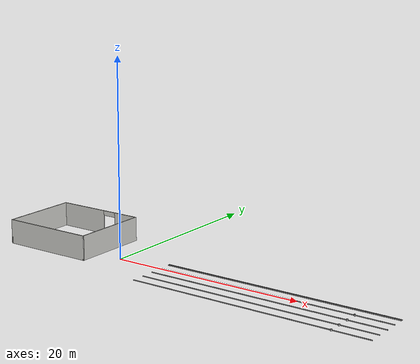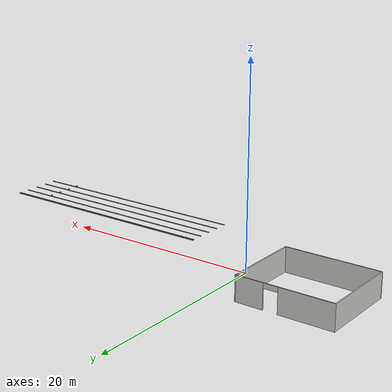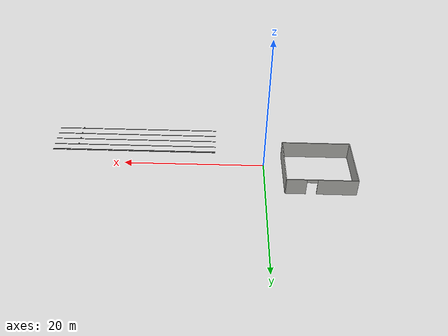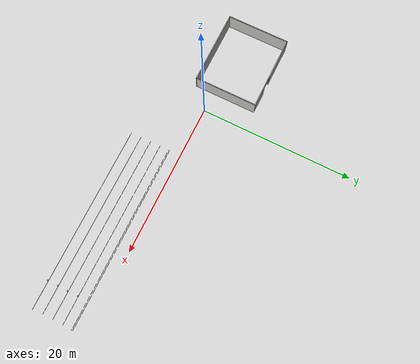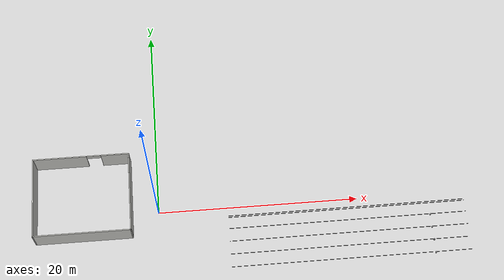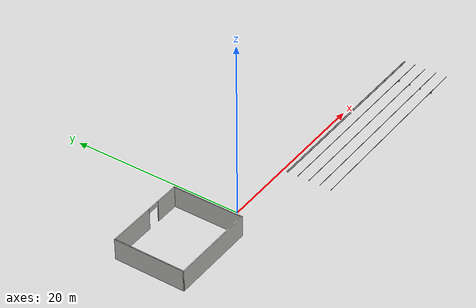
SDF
<sdf version="1.4">
 <world name="default">
  <model name="tray_p2_4">
   <static>1</static>
   <link name="link_0">
    <collision name="collision"><geometry><box><size>23.62 0.085 0.005</size></box></geometry></collision>
    <visual name="visual">
     <geometry><box><size>23.62 0.085 0.005</size></box></geometry>
     <material>
      <script><uri>file://media/materials/scripts/gazebo.material</uri><name>Gazebo/Grey</name></script>
      <emissive>0 0 0 1</emissive>
      <shader type="vertex"><normal_map>__default__</normal_map></shader>
      <specular>0.01 0.01 0.01 1</specular>
      <lighting>1</lighting>
      <ambient>0.7 0.7 0.7 1</ambient>
      <diffuse>0.3 0.3 0.3 1</diffuse>
     </material>
    </visual>
    <pose>18.760 -1.435 1.19165 1.5707 0.0 0.0</pose>
   </link>
  </model>
  <model name="tray_p2_5">
   <static>1</static>
   <link name="link_0">
    <collision name="collision"><geometry><box><size>23.62 0.085 0.005</size></box></geometry></collision>
    <visual name="visual">
     <geometry><box><size>23.62 0.085 0.005</size></box></geometry>
     <material>
      <script><uri>file://media/materials/scripts/gazebo.material</uri><name>Gazebo/Grey</name></script>
      <emissive>0 0 0 1</emissive>
      <shader type="vertex"><normal_map>__default__</normal_map></shader>
      <specular>0.01 0.01 0.01 1</specular>
      <lighting>1</lighting>
      <ambient>0.7 0.7 0.7 1</ambient>
      <diffuse>0.3 0.3 0.3 1</diffuse>
     </material>
    </visual>
    <pose>18.760 -6.565 1.19165 1.5707 0.0 0.0</pose>
   </link>
  </model>
  <model name="tray_p2_6">
   <static>1</static>
   <link name="link_0">
    <collision name="collision"><geometry><box><size>23.62 0.085 0.005</size></box></geometry></collision>
    <visual name="visual">
     <geometry><box><size>23.62 0.085 0.005</size></box></geometry>
     <material>
      <script><uri>file://media/materials/scripts/gazebo.material</uri><name>Gazebo/Grey</name></script>
      <emissive>0 0 0 1</emissive>
      <shader type="vertex"><normal_map>__default__</normal_map></shader>
      <specular>0.01 0.01 0.01 1</specular>
      <lighting>1</lighting>
      <ambient>0.7 0.7 0.7 1</ambient>
      <diffuse>0.3 0.3 0.3 1</diffuse>
     </material>
    </visual>
    <pose>18.760 -5.245 1.19165 1.5707 0.0 0.0</pose>
   </link>
  </model>
  <model name="tray_p2_7">
   <static>1</static>
   <link name="link_0">
    <collision name="collision"><geometry><box><size>23.62 0.085 0.005</size></box></geometry></collision>
    <visual name="visual">
     <geometry><box><size>23.62 0.085 0.005</size></box></geometry>
     <material>
      <script><uri>file://media/materials/scripts/gazebo.material</uri><name>Gazebo/Grey</name></script>
      <emissive>0 0 0 1</emissive>
      <shader type="vertex"><normal_map>__default__</normal_map></shader>
      <specular>0.01 0.01 0.01 1</specular>
      <lighting>1</lighting>
      <ambient>0.7 0.7 0.7 1</ambient>
      <diffuse>0.3 0.3 0.3 1</diffuse>
     </material>
    </visual>
    <pose>18.760 -3.925 1.19165 1.5707 0.0 0.0</pose>
   </link>
  </model>
  <model name="tray_p2_8">
   <static>1</static>
   <link name="link_0">
    <collision name="collision"><geometry><box><size>23.62 0.085 0.005</size></box></geometry></collision>
    <visual name="visual">
     <geometry><box><size>23.62 0.085 0.005</size></box></geometry>
     <material>
      <script><uri>file://media/materials/scripts/gazebo.material</uri><name>Gazebo/Grey</name></script>
      <emissive>0 0 0 1</emissive>
      <shader type="vertex"><normal_map>__default__</normal_map></shader>
      <specular>0.01 0.01 0.01 1</specular>
      <lighting>1</lighting>
      <ambient>0.7 0.7 0.7 1</ambient>
      <diffuse>0.3 0.3 0.3 1</diffuse>
     </material>
    </visual>
    <pose>18.760 -2.605 1.19165 1.5707 0.0 0.0</pose>
   </link>
  </model>
  <model name="tray_p2_9">
   <static>1</static>
   <link name="link_0">
    <collision name="collision"><geometry><box><size>23.62 0.085 0.005</size></box></geometry></collision>
    <visual name="visual">
     <geometry><box><size>23.62 0.085 0.005</size></box></geometry>
     <material>
      <script><uri>file://media/materials/scripts/gazebo.material</uri><name>Gazebo/Grey</name></script>
      <emissive>0 0 0 1</emissive>
      <shader type="vertex"><normal_map>__default__</normal_map></shader>
      <specular>0.01 0.01 0.01 1</specular>
      <lighting>1</lighting>
      <ambient>0.7 0.7 0.7 1</ambient>
      <diffuse>0.3 0.3 0.3 1</diffuse>
     </material>
    </visual>
    <pose>18.760 -1.285 1.19165 1.5707 0.0 0.0</pose>
   </link>
  </model>
  <model name="pot1_0">
   <static>1</static>
   <link name="link_0">
    <collision name="collision">
     <geometry><cylinder><length>0.17</length><radius>0.07</radius></cylinder></geometry>
    </collision>
    <visual name="visual">
     <geometry><cylinder><length>0.17</length><radius>0.07</radius></cylinder></geometry>
     <material>
      <script><uri>file://media/materials/scripts/gazebo.material</uri><name>Gazebo/Grey</name></script>
      <emissive>0 0 0 1</emissive>
      <shader type="vertex"><normal_map>__default__</normal_map></shader>
      <specular>0.01 0.01 0.01 1</specular>
      <lighting>1</lighting>
      <ambient>0.1 0.1 0.1 1</ambient>
      <diffuse>0.05 0.05 0.05 1</diffuse>
     </material>
    </visual>
    <pose>27.000 -6.640 1.23465 0.0 0.0 0.0</pose>
   </link>
  </model>
  <model name="pot1_1">
   <static>1</static>
   <link name="link_0">
    <collision name="collision">
     <geometry><cylinder><length>0.17</length><radius>0.07</radius></cylinder></geometry>
    </collision>
    <visual name="visual">
     <geometry><cylinder><length>0.17</length><radius>0.07</radius></cylinder></geometry>
     <material>
      <script><uri>file://media/materials/scripts/gazebo.material</uri><name>Gazebo/Grey</name></script>
      <emissive>0 0 0 1</emissive>
      <shader type="vertex"><normal_map>__default__</normal_map></shader>
      <specular>0.01 0.01 0.01 1</specular>
      <lighting>1</lighting>
      <ambient>0.1 0.1 0.1 1</ambient>
      <diffuse>0.05 0.05 0.05 1</diffuse>
     </material>
    </visual>
    <pose>27.000 -5.320 1.23465 0.0 0.0 0.0</pose>
   </link>
  </model>
  <model name="pot1_2">
   <static>1</static>
   <link name="link_0">
    <collision name="collision">
     <geometry><cylinder><length>0.17</length><radius>0.07</radius></cylinder></geometry>
    </collision>
    <visual name="visual">
     <geometry><cylinder><length>0.17</length><radius>0.07</radius></cylinder></geometry>
     <material>
      <script><uri>file://media/materials/scripts/gazebo.material</uri><name>Gazebo/Grey</name></script>
      <emissive>0 0 0 1</emissive>
      <shader type="vertex"><normal_map>__default__</normal_map></shader>
      <specular>0.01 0.01 0.01 1</specular>
      <lighting>1</lighting>
      <ambient>0.1 0.1 0.1 1</ambient>
      <diffuse>0.05 0.05 0.05 1</diffuse>
     </material>
    </visual>
    <pose>27.000 -4.000 1.23465 0.0 0.0 0.0</pose>
   </link>
  </model>
  <model name="pot1_3">
   <static>1</static>
   <link name="link_0">
    <collision name="collision">
     <geometry><cylinder><length>0.17</length><radius>0.07</radius></cylinder></geometry>
    </collision>
    <visual name="visual">
     <geometry><cylinder><length>0.17</length><radius>0.07</radius></cylinder></geometry>
     <material>
      <script><uri>file://media/materials/scripts/gazebo.material</uri><name>Gazebo/Grey</name></script>
      <emissive>0 0 0 1</emissive>
      <shader type="vertex"><normal_map>__default__</normal_map></shader>
      <specular>0.01 0.01 0.01 1</specular>
      <lighting>1</lighting>
      <ambient>0.1 0.1 0.1 1</ambient>
      <diffuse>0.05 0.05 0.05 1</diffuse>
     </material>
    </visual>
    <pose>27.000 -2.680 1.23465 0.0 0.0 0.0</pose>
   </link>
  </model>
  <model name="food_handling_shed_0">
   <static>1</static>
   <pose>-7.470 1.670 0.0 0.0 0.0 3.141</pose>
   <link name="Wall_10">
    <collision name="Wall_10_Collision">
     <geometry><box><size>8.2 0.1 2.5</size></box></geometry>
     <pose>0 0 1.25 0 -0 0</pose>
    </collision>
    <visual name="Wall_10_Visual">
     <geometry><box><size>8.2 0.1 2.5</size></box></geometry>
     <meta><layer>0</layer></meta>
     <material>
      <script><uri>file://media/materials/scripts/gazebo.material</uri><name>Gazebo/CeilingTiled</name></script>
      <ambient>1 1 1 1</ambient>
     </material>
     <pose>0 0 1.25 0 -0 0</pose>
    </visual>
    <pose>4.8 0 0 0 -0 -1.5708</pose>
   </link>
   <link name="Wall_11">
    <collision name="Wall_11_Collision_0">
     <geometry><box><size>5.43069 0.1 2.5</size></box></geometry>
     <pose>-2.13443 0 1.25 0 -0 0</pose>
    </collision>
    <collision name="Wall_11_Collision_1">
     <geometry><box><size>2.83185 0.1 2.5</size></box></geometry>
     <pose>3.43384 0 1.25 0 -0 0</pose>
    </collision>
    <collision name="Wall_11_Collision_2">
     <geometry><box><size>1.437 0.1 0.5</size></box></geometry>
     <pose>1.29942 0 2.25 0 -0 0</pose>
    </collision>
    <visual name="Wall_11_Visual_0">
     <geometry><box><size>5.43069 0.1 2.5</size></box></geometry>
     <meta><layer>0</layer></meta>
     <material>
      <script><uri>file://media/materials/scripts/gazebo.material</uri><name>Gazebo/CeilingTiled</name></script>
      <ambient>1 1 1 1</ambient>
     </material>
     <pose>-2.13443 0 1.25 0 -0 0</pose>
    </visual>
    <visual name="Wall_11_Visual_1">
     <geometry><box><size>2.83185 0.1 2.5</size></box></geometry>
     <meta><layer>0</layer></meta>
     <material>
      <script><uri>file://media/materials/scripts/gazebo.material</uri><name>Gazebo/CeilingTiled</name></script>
      <ambient>1 1 1 1</ambient>
     </material>
     <pose>3.43384 0 1.25 0 -0 0</pose>
    </visual>
    <visual name="Wall_11_Visual_2">
     <geometry><box><size>1.437 0.1 0.5</size></box></geometry>
     <meta><layer>0</layer></meta>
     <material>
      <script><uri>file://media/materials/scripts/gazebo.material</uri><name>Gazebo/CeilingTiled</name></script>
      <ambient>1 1 1 1</ambient>
     </material>
     <pose>1.29942 0 2.25 0 -0 0</pose>
    </visual>
    <pose>-0 -4.05 0 0 -0 3.14159</pose>
   </link>
   <link name="Wall_12">
    <collision name="Wall_12_Collision">
     <geometry><box><size>8.2 0.1 2.5</size></box></geometry>
     <pose>0 0 1.25 0 -0 0</pose>
    </collision>
    <visual name="Wall_12_Visual">
     <geometry><box><size>8.2 0.1 2.5</size></box></geometry>
     <meta><layer>0</layer></meta>
     <material>
      <script><uri>file://media/materials/scripts/gazebo.material</uri><name>Gazebo/CeilingTiled</name></script>
      <ambient>1 1 1 1</ambient>
     </material>
     <pose>0 0 1.25 0 -0 0</pose>
    </visual>
    <pose>-4.8 0 0 0 -0 1.5708</pose>
   </link>
   <link name="Wall_9">
    <collision name="Wall_9_Collision">
     <geometry><box><size>9.70046 0.1 2.5</size></box></geometry>
     <pose>0 0 1.25 0 -0 0</pose>
    </collision>
    <visual name="Wall_9_Visual">
     <geometry><box><size>9.70046 0.1 2.5</size></box></geometry>
     <meta><layer>0</layer></meta>
     <material>
      <script><uri>file://media/materials/scripts/gazebo.material</uri><name>Gazebo/CeilingTiled</name></script>
      <ambient>1 1 1 1</ambient>
     </material>
     <pose>0 0 1.25 0 -0 0</pose>
    </visual>
    <pose>-0 4.05 0 0 -0 0</pose>
   </link>
  </model>
  <include><uri>model://sun</uri></include>
 </world>
</sdf>
